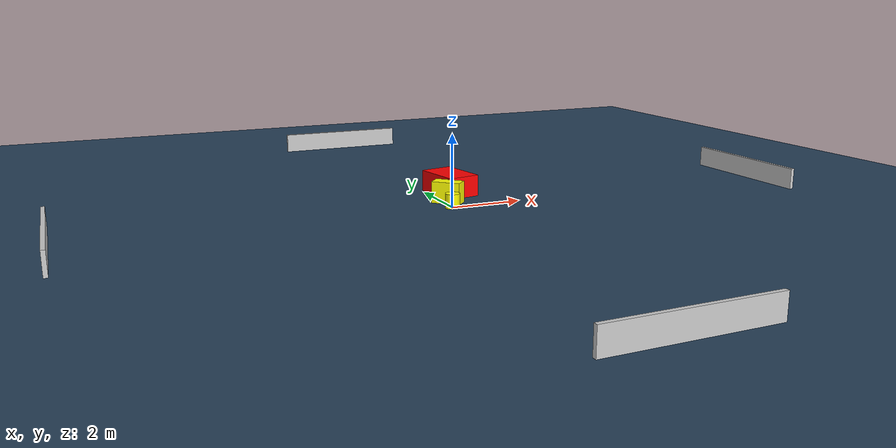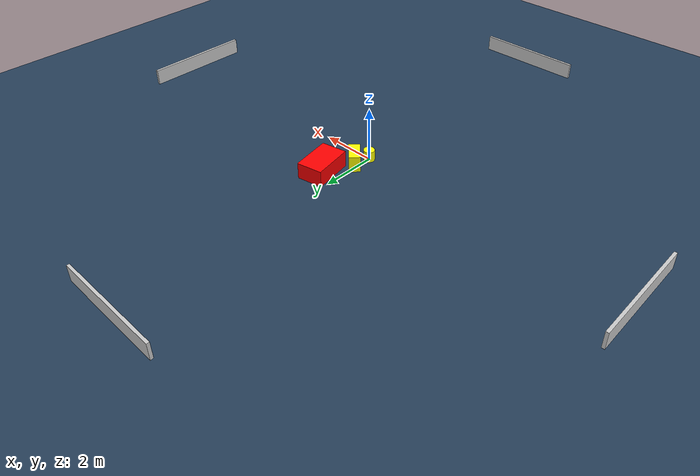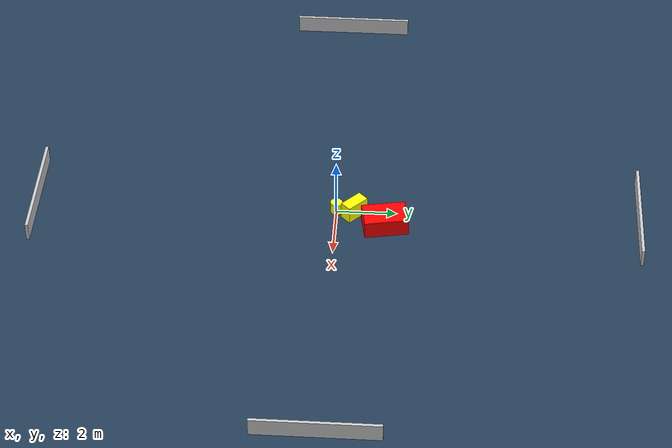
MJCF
<?xml version="1.0" ?>
<mujoco model="generated_environment">
  <option timestep="0.01" integrator="RK4" cone="elliptic"/>
  <default>
    <geom density="1"/>
  </default>
  <asset>
    <texture builtin="gradient" height="3072" name="skybox" rgb1="0.3 0.5 0.7" rgb2="0 0 0" type="skybox" width="512"/>
    <texture builtin="checker" height="300" name="groundplane" rgb1="0.2 0.3 0.4" rgb2="0.1 0.2 0.3" type="2d" width="300"/>
    <material name="groundplane" reflectance="0.2" texrepeat="5 5" texture="groundplane"/>
  </asset>
  <worldbody>
    <light dir="0 0 -1" directional="true" pos="0 0 1.5"/>
    <geom condim="3" friction="0.5 0.005 0.001" material="groundplane" name="floor" pos="0 0 0" size="0 0 0.05" type="plane"/>
    <body name="walls">
      <geom name="wall_1" condim="4" pos="-10.0 0.0 0.3" rgba="0.800000011920929 0.800000011920929 0.800000011920929 1.0" size="0.05 2.0 0.3" type="box"/>
      <geom name="wall_2" condim="4" pos="10.0 0.0 0.3" rgba="0.800000011920929 0.800000011920929 0.800000011920929 1.0" size="0.05 2.0 0.3" type="box"/>
      <geom name="wall_3" condim="4" pos="0.0 -10.0 0.3" rgba="0.800000011920929 0.800000011920929 0.800000011920929 1.0" size="2.0 0.05 0.3" type="box"/>
      <geom name="wall_4" condim="4" pos="0.0 10.0 0.3" rgba="0.800000011920929 0.800000011920929 0.800000011920929 1.0" size="2.0 0.05 0.3" type="box"/>
    </body>
    <body name="robot">
      <joint name="joint_x" type="slide" pos="0 0 0" axis="1 0 0"/>
      <joint name="joint_y" type="slide" pos="0 0 0" axis="0 1 0"/>
      <geom name="robot" type="cylinder" pos="0.0 0.0 0.2" size="0.2 0.2 0.0" mass="5.0" friction="1.0 0.005 0.0001" condim="4" rgba="1.0 1.0 0.0 1.0"/>
    </body>
    <body name="obstacle_1_movable">
      <geom name="obstacle_1_movable" condim="4" pos="0.1277333487145921 0.5999746572634606 0.3" euler="0 0 135.57032406289298" friction="0.0 0.005 0.001" rgba="1.0 1.0 0.0 1.0" size="0.40411547270871667 0.20114116838831705 0.3" type="box" mass="0.1"/>
      <joint type="free"/>
    </body>
    <body name="obstacle_2_static">
      <geom name="obstacle_2_static" condim="4" pos="0.651863428999888 1.6296760371361243 0.3" euler="0 0 10.470075582922407" friction="0.0 0.005 0.001" rgba="1.0 0.0 0.0 1.0" size="0.4704356875819873 0.723679772837287 0.3" type="box"/>
    </body>
  </worldbody>
  <actuator>
    <motor name="actuator_x" joint="joint_x" gear="1" ctrlrange="-1 1"/>
    <motor name="actuator_y" joint="joint_y" gear="1" ctrlrange="-1 1"/>
  </actuator>
</mujoco>
